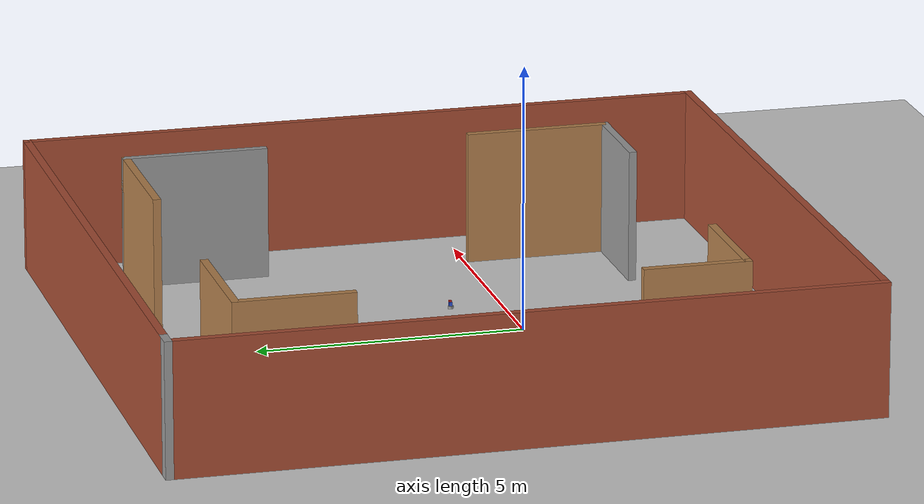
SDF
<sdf version="1.7">
 <world name="test_environment">
  <plugin name="gazebo_ros" filename="libgazebo_ros_init.so"/>
  <plugin name="gazebo_ros_factory" filename="libgazebo_ros_factory.so"/>
  <plugin name="gazebo_ros_state" filename="libgazebo_ros_state.so"/>
  <light name="sun" type="directional">
   <pose>0 0 10 0 -0 0</pose>
   <diffuse>0.8 0.8 0.8 1</diffuse>
   <specular>0.2 0.2 0.2 1</specular>
   <attenuation>
    <range>1000</range>
    <constant>0.9</constant>
    <linear>0.01</linear>
    <quadratic>0.001</quadratic>
   </attenuation>
   <direction>-0.5 0.1 -0.9</direction>
   <spot><inner_angle>0</inner_angle><outer_angle>0</outer_angle><falloff>0</falloff></spot>
  </light>
  <model name="ground_plane">
   <static>1</static>
   <link name="link">
    <collision name="collision">
     <geometry><plane><normal>0 0 1</normal><size>100 100</size></plane></geometry>
     <surface><friction><ode><mu>100</mu><mu2>50</mu2></ode></friction></surface>
    </collision>
    <visual name="visual">
     <cast_shadows>0</cast_shadows>
     <geometry><plane><normal>0 0 1</normal><size>100 100</size></plane></geometry>
     <material>
      <script><uri>file://media/materials/scripts/gazebo.material</uri><name>Gazebo/Grey</name></script>
     </material>
    </visual>
   </link>
  </model>
  <model name="TestEnv">
   <pose>-0.204263 1.5708 0 0 -0 0</pose>
   <link name="Wall_23">
    <collision name="Wall_23_Collision">
     <geometry><box><size>13 0.15 2.5</size></box></geometry>
     <pose>0 0 1.25 0 -0 0</pose>
    </collision>
    <visual name="Wall_23_Visual">
     <pose>0 0 1.25 0 -0 0</pose>
     <geometry><box><size>13 0.15 2.5</size></box></geometry>
     <material>
      <script><uri>file://media/materials/scripts/gazebo.material</uri><name>Gazebo/Bricks</name></script>
      <ambient>1 1 1 1</ambient>
     </material>
    </visual>
    <pose>-6.05 -0 0 0 -0 -1.5708</pose>
   </link>
   <link name="Wall_24">
    <collision name="Wall_24_Collision">
     <geometry><box><size>12.25 0.15 2.5</size></box></geometry>
     <pose>0 0 1.25 0 -0 0</pose>
    </collision>
    <visual name="Wall_24_Visual">
     <pose>0 0 1.25 0 -0 0</pose>
     <geometry><box><size>12.25 0.15 2.5</size></box></geometry>
     <material>
      <script><uri>file://media/materials/scripts/gazebo.material</uri><name>Gazebo/Bricks</name></script>
      <ambient>1 1 1 1</ambient>
     </material>
    </visual>
    <pose>-0 -6.425 0 0 -0 0</pose>
   </link>
   <link name="Wall_25">
    <collision name="Wall_25_Collision">
     <geometry><box><size>13 0.15 2.5</size></box></geometry>
     <pose>0 0 1.25 0 -0 0</pose>
    </collision>
    <visual name="Wall_25_Visual">
     <pose>0 0 1.25 0 -0 0</pose>
     <geometry><box><size>13 0.15 2.5</size></box></geometry>
     <material>
      <script><uri>file://media/materials/scripts/gazebo.material</uri><name>Gazebo/Bricks</name></script>
      <ambient>1 1 1 1</ambient>
     </material>
    </visual>
    <pose>6.05 -0 0 0 -0 1.5708</pose>
   </link>
   <link name="Wall_26">
    <collision name="Wall_26_Collision">
     <geometry><box><size>12 0.15 2.5</size></box></geometry>
     <pose>0 0 1.25 0 -0 0</pose>
    </collision>
    <visual name="Wall_26_Visual">
     <pose>0 0 1.25 0 -0 0</pose>
     <geometry><box><size>12 0.15 2.5</size></box></geometry>
     <material>
      <script><uri>file://media/materials/scripts/gazebo.material</uri><name>Gazebo/Bricks</name></script>
      <ambient>1 1 1 1</ambient>
     </material>
    </visual>
    <pose>0.125 6.425 0 0 -0 3.14159</pose>
   </link>
   <link name="Wall_27">
    <collision name="Wall_27_Collision">
     <geometry><box><size>0.4 0.15 2.5</size></box></geometry>
     <pose>0 0 1.25 0 -0 0</pose>
    </collision>
    <visual name="Wall_27_Visual">
     <pose>0 0 1.25 0 -0 0</pose>
     <geometry><box><size>0.4 0.15 2.5</size></box></geometry>
     <material>
      <script><uri>file://media/materials/scripts/gazebo.material</uri><name>Gazebo/Grey</name></script>
      <ambient>1 1 1 1</ambient>
     </material>
    </visual>
    <pose>-5.925 6.425 0 0 -0 3.14159</pose>
   </link>
   <link name="Wall_29">
    <collision name="Wall_29_Collision">
     <geometry><box><size>2.25 0.15 2.5</size></box></geometry>
     <pose>0 0 1.25 0 -0 0</pose>
    </collision>
    <visual name="Wall_29_Visual">
     <pose>0 0 1.25 0 -0 0</pose>
     <geometry><box><size>2.25 0.15 2.5</size></box></geometry>
     <material>
      <script><uri>file://media/materials/scripts/gazebo.material</uri><name>Gazebo/Wood</name></script>
      <ambient>1 1 1 1</ambient>
     </material>
    </visual>
    <pose>-4.24325 3.78017 0 0 -0 1.5708</pose>
   </link>
   <link name="Wall_30">
    <collision name="Wall_30_Collision">
     <geometry><box><size>2.5 0.15 2.5</size></box></geometry>
     <pose>0 0 1.25 0 -0 0</pose>
    </collision>
    <visual name="Wall_30_Visual">
     <pose>0 0 1.25 0 -0 0</pose>
     <geometry><box><size>2.5 0.15 2.5</size></box></geometry>
     <material>
      <script><uri>file://media/materials/scripts/gazebo.material</uri><name>Gazebo/Wood</name></script>
      <ambient>1 1 1 1</ambient>
     </material>
    </visual>
    <pose>-3.06825 4.83017 0 0 -0 0</pose>
   </link>
   <link name="Wall_32">
    <collision name="Wall_32_Collision">
     <geometry><box><size>2.75 0.15 2.5</size></box></geometry>
     <pose>0 0 1.25 0 -0 0</pose>
    </collision>
    <visual name="Wall_32_Visual">
     <pose>0 0 1.25 0 -0 0</pose>
     <geometry><box><size>2.75 0.15 2.5</size></box></geometry>
     <material>
      <script><uri>file://media/materials/scripts/gazebo.material</uri><name>Gazebo/Wood</name></script>
      <ambient>1 1 1 1</ambient>
     </material>
    </visual>
    <pose>3.23598 4.87148 0 0 -0 0</pose>
   </link>
   <link name="Wall_33">
    <collision name="Wall_33_Collision">
     <geometry><box><size>2.75 0.15 2.5</size></box></geometry>
     <pose>0 0 1.25 0 -0 0</pose>
    </collision>
    <visual name="Wall_33_Visual">
     <pose>0 0 1.25 0 -0 0</pose>
     <geometry><box><size>2.75 0.15 2.5</size></box></geometry>
     <material>
      <script><uri>file://media/materials/scripts/gazebo.material</uri><name>Gazebo/Grey</name></script>
      <ambient>1 1 1 1</ambient>
     </material>
    </visual>
    <pose>4.53598 3.57148 0 0 -0 -1.5708</pose>
   </link>
   <link name="Wall_35">
    <collision name="Wall_35_Collision">
     <geometry><box><size>2 0.15 2.5</size></box></geometry>
     <pose>0 0 1.25 0 -0 0</pose>
    </collision>
    <visual name="Wall_35_Visual">
     <pose>0 0 1.25 0 -0 0</pose>
     <geometry><box><size>2 0.15 2.5</size></box></geometry>
     <material>
      <script><uri>file://media/materials/scripts/gazebo.material</uri><name>Gazebo/Wood</name></script>
      <ambient>1 1 1 1</ambient>
     </material>
    </visual>
    <pose>-4.27384 -3.51753 0 0 -0 -1.5708</pose>
   </link>
   <link name="Wall_36">
    <collision name="Wall_36_Collision">
     <geometry><box><size>2.25 0.15 2.5</size></box></geometry>
     <pose>0 0 1.25 0 -0 0</pose>
    </collision>
    <visual name="Wall_36_Visual">
     <pose>0 0 1.25 0 -0 0</pose>
     <geometry><box><size>2.25 0.15 2.5</size></box></geometry>
     <material>
      <script><uri>file://media/materials/scripts/gazebo.material</uri><name>Gazebo/Wood</name></script>
      <ambient>1 1 1 1</ambient>
     </material>
    </visual>
    <pose>-3.22384 -4.44253 0 0 -0 0</pose>
   </link>
   <link name="Wall_38">
    <collision name="Wall_38_Collision">
     <geometry><box><size>2.75 0.15 2.5</size></box></geometry>
     <pose>0 0 1.25 0 -0 0</pose>
    </collision>
    <visual name="Wall_38_Visual">
     <pose>0 0 1.25 0 -0 0</pose>
     <geometry><box><size>2.75 0.15 2.5</size></box></geometry>
     <material>
      <script><uri>file://media/materials/scripts/gazebo.material</uri><name>Gazebo/Wood</name></script>
      <ambient>1 1 1 1</ambient>
     </material>
    </visual>
    <pose>4.44437 -3.00542 0 0 -0 -1.5708</pose>
   </link>
   <link name="Wall_39">
    <collision name="Wall_39_Collision">
     <geometry><box><size>2 0.15 2.5</size></box></geometry>
     <pose>0 0 1.25 0 -0 0</pose>
    </collision>
    <visual name="Wall_39_Visual">
     <pose>0 0 1.25 0 -0 0</pose>
     <geometry><box><size>2 0.15 2.5</size></box></geometry>
     <material>
      <script><uri>file://media/materials/scripts/gazebo.material</uri><name>Gazebo/Grey</name></script>
      <ambient>1 1 1 1</ambient>
     </material>
    </visual>
    <pose>3.51937 -4.30542 0 0 -0 3.14159</pose>
   </link>
   <static>1</static>
  </model>
  <gravity>0 0 -9.8</gravity>
  <magnetic_field>6e-06 2.3e-05 -4.2e-05</magnetic_field>
  <atmosphere type="adiabatic"/>
  <physics type="ode">
   <max_step_size>0.001</max_step_size>
   <real_time_factor>1</real_time_factor>
   <real_time_update_rate>1000</real_time_update_rate>
  </physics>
  <scene><ambient>0.4 0.4 0.4 1</ambient><background>0.7 0.7 0.7 1</background><shadows>1</shadows></scene>
  <audio><device>default</device></audio>
  <spherical_coordinates>
   <surface_model>EARTH_WGS84</surface_model>
   <latitude_deg>0</latitude_deg>
   <longitude_deg>0</longitude_deg>
   <elevation>0</elevation>
   <heading_deg>0</heading_deg>
  </spherical_coordinates>
  <model name="pan_tilt">
   <joint name="base_joint" type="fixed">
    <pose relative_to="__model__">0.081932 1.34785 0.5 0 -0 0</pose>
    <parent>world</parent>
    <child>base_link</child>
   </joint>
   <link name="base_link">
    <pose relative_to="base_joint">0 0 0 0 -0 0</pose>
    <inertial>
     <pose>0 0 0.025 0 -0 0</pose>
     <mass>0.5</mass>
     <inertia><ixx>0.0005</ixx><ixy>0</ixy><ixz>0</ixz><iyy>0.0005</iyy><iyz>0</iyz><izz>0.000625</izz></inertia>
    </inertial>
    <collision name="base_link_collision">
     <pose>0 0 0.025 0 -0 0</pose>
     <geometry><cylinder><length>0.05</length><radius>0.05</radius></cylinder></geometry>
    </collision>
    <visual name="base_link_visual">
     <pose>0 0 0.025 0 -0 0</pose>
     <geometry><cylinder><length>0.05</length><radius>0.05</radius></cylinder></geometry>
     <material>
      <script><name>Gazebo/Grey</name><uri>file://media/materials/scripts/gazebo.material</uri></script>
     </material>
    </visual>
   </link>
   <joint name="pan_joint" type="revolute">
    <pose relative_to="base_link">0 0 0.05 0 -0 0</pose>
    <parent>base_link</parent>
    <child>pan_link</child>
    <axis>
     <xyz>0 0 1</xyz>
     <limit><effort>10</effort><velocity>2</velocity><lower>-1e+16</lower><upper>1e+16</upper></limit>
     <dynamics>
      <damping>0.5</damping>
      <friction>0.1</friction>
      <spring_reference>0</spring_reference>
      <spring_stiffness>0</spring_stiffness>
     </dynamics>
    </axis>
   </joint>
   <link name="pan_link">
    <pose relative_to="pan_joint">0 0 0 0 -0 0</pose>
    <inertial>
     <pose>0 0 0.035 0 -0 0</pose>
     <mass>0.3</mass>
     <inertia>
      <ixx>0.000155</ixx>
      <ixy>0</ixy>
      <ixz>0</ixz>
      <iyy>0.000143</iyy>
      <iyz>4e-05</iyz>
      <izz>0.000155</izz>
     </inertia>
    </inertial>
    <collision name="pan_link_collision">
     <pose>0 0 0.035 0 -0 0</pose>
     <geometry><box><size>0.04 0.06 0.07</size></box></geometry>
    </collision>
    <visual name="pan_link_visual">
     <pose>0 0 0.035 0 -0 0</pose>
     <geometry><box><size>0.04 0.06 0.07</size></box></geometry>
     <material>
      <script><name>Gazebo/Blue</name><uri>file://media/materials/scripts/gazebo.material</uri></script>
     </material>
    </visual>
   </link>
   <joint name="tilt_joint" type="revolute">
    <pose relative_to="pan_link">0 0 0.07 0 -0 0</pose>
    <parent>pan_link</parent>
    <child>tilt_link</child>
    <axis>
     <xyz>0 1 0</xyz>
     <limit><lower>-1.57079</lower><upper>1.57079</upper><effort>10</effort><velocity>2</velocity></limit>
     <dynamics>
      <damping>0.5</damping>
      <friction>0.1</friction>
      <spring_reference>0</spring_reference>
      <spring_stiffness>0</spring_stiffness>
     </dynamics>
    </axis>
   </joint>
   <link name="tilt_link">
    <pose relative_to="tilt_joint">0 0 0 0 -0 0</pose>
    <inertial>
     <pose>0.03 0 0 0 -0 0</pose>
     <mass>0.2</mass>
     <inertia>
      <ixx>9.99e-05</ixx>
      <ixy>0</ixy>
      <ixz>0</ixz>
      <iyy>0.0001399</iyy>
      <iyz>0</iyz>
      <izz>0.00020325</izz>
     </inertia>
    </inertial>
    <collision name="tilt_link_collision">
     <pose>0.03 0 0 0 -0 0</pose>
     <geometry><box><size>0.06 0.05 0.04</size></box></geometry>
    </collision>
    <collision name="tilt_link_fixed_joint_lump__camera_link_collision_1">
     <pose>0.065 0 0.025 0 -0 0</pose>
     <geometry><cylinder><length>0.025</length><radius>0.025</radius></cylinder></geometry>
    </collision>
    <visual name="tilt_link_visual">
     <pose>0.03 0 0 0 -0 0</pose>
     <geometry><box><size>0.06 0.05 0.04</size></box></geometry>
     <material>
      <script><name>Gazebo/Red</name><uri>file://media/materials/scripts/gazebo.material</uri></script>
     </material>
    </visual>
    <visual name="tilt_link_fixed_joint_lump__camera_link_visual_1">
     <pose>0.065 0 0 3.14159 1.57079 3.14159</pose>
     <geometry><cylinder><length>0.01</length><radius>0.02</radius></cylinder></geometry>
     <material>
      <script><name>Gazebo/Black</name><uri>file://media/materials/scripts/gazebo.material</uri></script>
     </material>
    </visual>
    <sensor name="camera" type="camera">
     <visualize>1</visualize>
     <update_rate>30</update_rate>
     <camera>
      <horizontal_fov>1</horizontal_fov>
      <image><width>640</width><height>480</height><format>R8G8B8</format></image>
      <clip><near>0.05</near><far>100</far></clip>
     </camera>
     <plugin name="camera_driver" filename="libgazebo_ros_camera.so"><frame_name>camera_link</frame_name></plugin>
     <pose>0.065 0 0 0 -0 0</pose>
    </sensor>
   </link>
   <plugin name="gazebo_ros_joint_state_publisher" filename="libgazebo_ros_joint_state_publisher.so">
    <update_rate>20</update_rate>
    <joint_name>pan_joint</joint_name>
    <joint_name>tilt_joint</joint_name>
   </plugin>
   <static>0</static>
   <plugin name="gazebo_ros_joint_pose_trajectory" filename="libgazebo_ros_joint_pose_trajectory.so">
    <update_rate>2</update_rate>
   </plugin>
  </model>
  <model name="target_APRILTAG_36H10_id0">
   <static>false</static>
   <link name="link">
    <collision name="collision"><geometry><box><size>0.01 0.2 0.2</size></box></geometry></collision>
    <visual name="visual">
     <geometry><box><size>0.01 0.2 0.2</size></box></geometry>
     <material>
      <script>
       <uri>model://target_APRILTAG_36H10_id0/materials/scripts</uri>
       <uri>model://target_APRILTAG_36H10_id0/materials/textures</uri>
       <name>target_APRILTAG_36H10_id0/Diffuse</name>
      </script>
     </material>
    </visual>
   </link>
   <pose>4.91395 -1.78645 1.07546 0 -0 0</pose>
  </model>
 </world>
</sdf>
